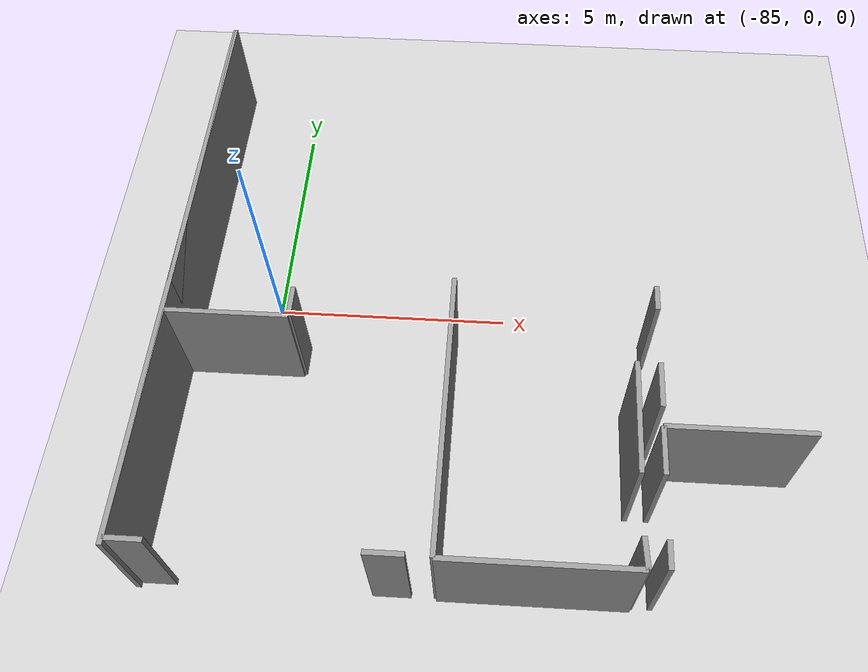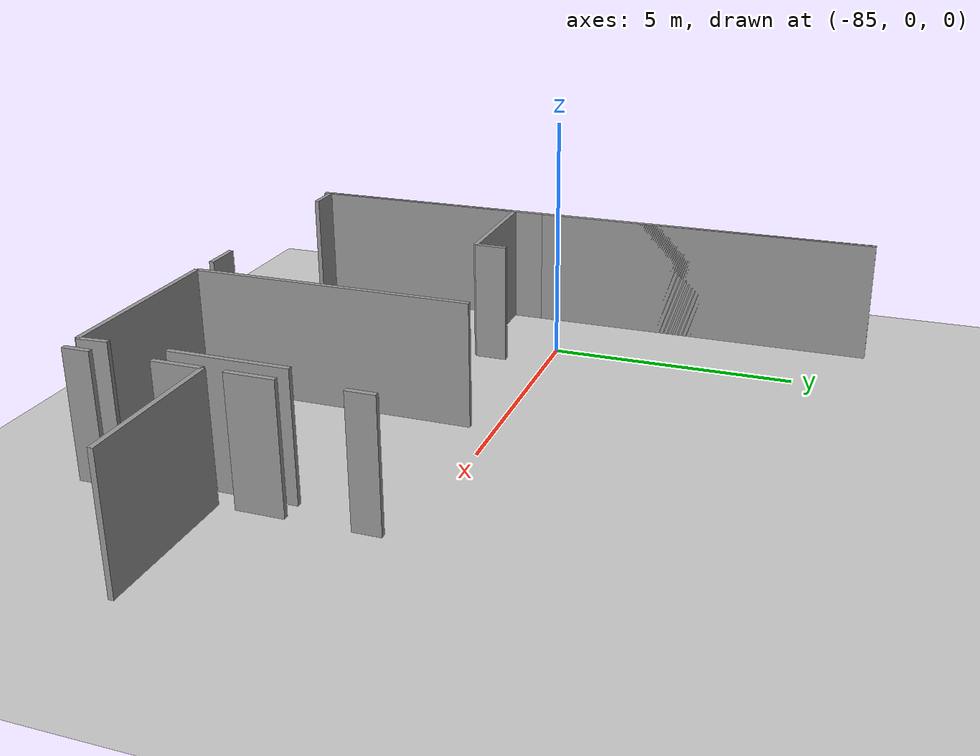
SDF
<sdf version="1.6">
 <world name="default">
  <model name="ground_plane">
   <static>1</static>
   <link name="link">
    <collision name="collision">
     <geometry><plane><normal>0 0 1</normal><size>100 100</size></plane></geometry>
     <surface><friction><ode><mu>100</mu><mu2>50</mu2></ode></friction></surface>
    </collision>
    <visual name="visual">
     <cast_shadows>0</cast_shadows>
     <geometry><plane><normal>0 0 1</normal><size>100 100</size></plane></geometry>
     <material>
      <script><uri>file://media/materials/scripts/gazebo.material</uri><name>Gazebo/Grey</name></script>
     </material>
    </visual>
   </link>
  </model>
  <model name="50015850_PLAN5">
   <static>1</static>
   <link name="Wall_25">
    <collision name="Wall_25_Collision">
     <geometry><box><size>0.744369012119 0.1 2.5</size></box></geometry>
     <pose>0.372184506059 0 1.25 0 0 0</pose>
    </collision>
    <visual name="Wall_25_Visual">
     <pose>0.372184506059 0 1.25 0 0 0</pose>
     <geometry><box><size>0.744369012119 0.1 2.5</size></box></geometry>
     <material>
      <script><uri>file://media/materials/scripts/gazebo.material</uri><name>Gazebo/Grey</name></script>
      <ambient>1 1 1 1</ambient>
     </material>
    </visual>
    <pose>5.24357591523 -12.5019986041 0 0 0 3.14159265359</pose>
   </link>
   <link name="Wall_26">
    <collision name="Wall_26_Collision">
     <geometry><box><size>0.719243702811 0.1 2.5</size></box></geometry>
     <pose>0.359621851405 0 1.25 0 0 0</pose>
    </collision>
    <visual name="Wall_26_Visual">
     <pose>0.359621851405 0 1.25 0 0 0</pose>
     <geometry><box><size>0.719243702811 0.1 2.5</size></box></geometry>
     <material>
      <script><uri>file://media/materials/scripts/gazebo.material</uri><name>Gazebo/Grey</name></script>
      <ambient>1 1 1 1</ambient>
     </material>
    </visual>
    <pose>0.726349850898 -12.5019986041 0 0 0 3.14159265359</pose>
   </link>
   <link name="Wall_27">
    <collision name="Wall_27_Collision">
     <geometry><box><size>4.60678890933 0.1 2.5</size></box></geometry>
     <pose>2.30339445467 0 1.25 0 0 0</pose>
    </collision>
    <visual name="Wall_27_Visual">
     <pose>2.30339445467 0 1.25 0 0 0</pose>
     <geometry><box><size>4.60678890933 0.1 2.5</size></box></geometry>
     <material>
      <script><uri>file://media/materials/scripts/gazebo.material</uri><name>Gazebo/Grey</name></script>
      <ambient>1 1 1 1</ambient>
     </material>
    </visual>
    <pose>0.00710614808705 -12.5019986041 0 0 0 1.57079632679</pose>
   </link>
   <link name="Wall_28">
    <collision name="Wall_28_Collision">
     <geometry><box><size>2.50542478269 0.1 2.5</size></box></geometry>
     <pose>1.25271239135 0 1.25 0 0 0</pose>
    </collision>
    <visual name="Wall_28_Visual">
     <pose>1.25271239135 0 1.25 0 0 0</pose>
     <geometry><box><size>2.50542478269 0.1 2.5</size></box></geometry>
     <material>
      <script><uri>file://media/materials/scripts/gazebo.material</uri><name>Gazebo/Grey</name></script>
      <ambient>1 1 1 1</ambient>
     </material>
    </visual>
    <pose>0.00710614808705 -7.89520969482 0 0 0 0.0</pose>
   </link>
   <link name="Wall_29">
    <collision name="Wall_29_Collision">
     <geometry><box><size>0.66366347313 0.1 2.5</size></box></geometry>
     <pose>0.331831736565 0 1.25 0 0 0</pose>
    </collision>
    <visual name="Wall_29_Visual">
     <pose>0.331831736565 0 1.25 0 0 0</pose>
     <geometry><box><size>0.66366347313 0.1 2.5</size></box></geometry>
     <material>
      <script><uri>file://media/materials/scripts/gazebo.material</uri><name>Gazebo/Grey</name></script>
      <ambient>1 1 1 1</ambient>
     </material>
    </visual>
    <pose>2.51253093078 -7.89520969482 0 0 0 1.57079632679</pose>
   </link>
   <link name="Wall_31">
    <collision name="Wall_31_Collision">
     <geometry><box><size>7.22773935664 0.1 2.5</size></box></geometry>
     <pose>3.61386967832 0 1.25 0 0 0</pose>
    </collision>
    <visual name="Wall_31_Visual">
     <pose>3.61386967832 0 1.25 0 0 0</pose>
     <geometry><box><size>7.22773935664 0.1 2.5</size></box></geometry>
     <material>
      <script><uri>file://media/materials/scripts/gazebo.material</uri><name>Gazebo/Grey</name></script>
      <ambient>1 1 1 1</ambient>
     </material>
    </visual>
    <pose>0.0 -7.23154622169 0 0 0 1.57079632679</pose>
   </link>
   <link name="Wall_37">
    <collision name="Wall_37_Collision">
     <geometry><box><size>3.65915868282 0.1 2.5</size></box></geometry>
     <pose>1.82957934141 0 1.25 0 0 0</pose>
    </collision>
    <visual name="Wall_37_Visual">
     <pose>1.82957934141 0 1.25 0 0 0</pose>
     <geometry><box><size>3.65915868282 0.1 2.5</size></box></geometry>
     <material>
      <script><uri>file://media/materials/scripts/gazebo.material</uri><name>Gazebo/Grey</name></script>
      <ambient>1 1 1 1</ambient>
     </material>
    </visual>
    <pose>9.38214580293 -12.5344838525 0 0 0 3.14159265359</pose>
   </link>
   <link name="Wall_38">
    <collision name="Wall_38_Collision">
     <geometry><box><size>5.70060275363 0.1 2.5</size></box></geometry>
     <pose>2.85030137682 0 1.25 0 0 0</pose>
    </collision>
    <visual name="Wall_38_Visual">
     <pose>2.85030137682 0 1.25 0 0 0</pose>
     <geometry><box><size>5.70060275363 0.1 2.5</size></box></geometry>
     <material>
      <script><uri>file://media/materials/scripts/gazebo.material</uri><name>Gazebo/Grey</name></script>
      <ambient>1 1 1 1</ambient>
     </material>
    </visual>
    <pose>5.72298712011 -12.5344838525 0 0 0 1.57079632679</pose>
   </link>
   <link name="Wall_42">
    <collision name="Wall_42_Collision">
     <geometry><box><size>2.27120106592 0.1 2.5</size></box></geometry>
     <pose>1.13560053296 0 1.25 0 0 0</pose>
    </collision>
    <visual name="Wall_42_Visual">
     <pose>1.13560053296 0 1.25 0 0 0</pose>
     <geometry><box><size>2.27120106592 0.1 2.5</size></box></geometry>
     <material>
      <script><uri>file://media/materials/scripts/gazebo.material</uri><name>Gazebo/Grey</name></script>
      <ambient>1 1 1 1</ambient>
     </material>
    </visual>
    <pose>9.33392551234 -8.52735232536 0 0 0 -1.57079632679</pose>
   </link>
   <link name="Wall_43">
    <collision name="Wall_43_Collision">
     <geometry><box><size>0.589754594356 0.1 2.5</size></box></geometry>
     <pose>0.294877297178 0 1.25 0 0 0</pose>
    </collision>
    <visual name="Wall_43_Visual">
     <pose>0.294877297178 0 1.25 0 0 0</pose>
     <geometry><box><size>0.589754594356 0.1 2.5</size></box></geometry>
     <material>
      <script><uri>file://media/materials/scripts/gazebo.material</uri><name>Gazebo/Grey</name></script>
      <ambient>1 1 1 1</ambient>
     </material>
    </visual>
    <pose>9.33392551234 -11.9467038893 0 0 0 -1.48894163554</pose>
   </link>
   <link name="Wall_50">
    <collision name="Wall_50_Collision">
     <geometry><box><size>0.92166740689 0.1 2.5</size></box></geometry>
     <pose>0.460833703445 0 1.25 0 0 0</pose>
    </collision>
    <visual name="Wall_50_Visual">
     <pose>0.460833703445 0 1.25 0 0 0</pose>
     <geometry><box><size>0.92166740689 0.1 2.5</size></box></geometry>
     <material>
      <script><uri>file://media/materials/scripts/gazebo.material</uri><name>Gazebo/Grey</name></script>
      <ambient>1 1 1 1</ambient>
     </material>
    </visual>
    <pose>9.77602943976 -9.45889220227 0 0 0 1.57079632679</pose>
   </link>
   <link name="Wall_51">
    <collision name="Wall_51_Collision">
     <geometry><box><size>0.542579785547 0.1 2.5</size></box></geometry>
     <pose>0.271289892773 0 1.25 0 0 0</pose>
    </collision>
    <visual name="Wall_51_Visual">
     <pose>0.271289892773 0 1.25 0 0 0</pose>
     <geometry><box><size>0.542579785547 0.1 2.5</size></box></geometry>
     <material>
      <script><uri>file://media/materials/scripts/gazebo.material</uri><name>Gazebo/Grey</name></script>
      <ambient>1 1 1 1</ambient>
     </material>
    </visual>
    <pose>9.77602943976 -7.34128545143 0 0 0 1.57079632679</pose>
   </link>
   <link name="Wall_55">
    <collision name="Wall_55_Collision">
     <geometry><box><size>0.534230061544 0.1 2.5</size></box></geometry>
     <pose>0.267115030772 0 1.25 0 0 0</pose>
    </collision>
    <visual name="Wall_55_Visual">
     <pose>0.267115030772 0 1.25 0 0 0</pose>
     <geometry><box><size>0.534230061544 0.1 2.5</size></box></geometry>
     <material>
      <script><uri>file://media/materials/scripts/gazebo.material</uri><name>Gazebo/Grey</name></script>
      <ambient>1 1 1 1</ambient>
     </material>
    </visual>
    <pose>9.76613159064 -12.5215405114 0 0 0 1.57079632679</pose>
   </link>
   <link name="Wall_56">
    <collision name="Wall_56_Collision">
     <geometry><box><size>0.954076517987 0.1 2.5</size></box></geometry>
     <pose>0.477038258994 0 1.25 0 0 0</pose>
    </collision>
    <visual name="Wall_56_Visual">
     <pose>0.477038258994 0 1.25 0 0 0</pose>
     <geometry><box><size>0.954076517987 0.1 2.5</size></box></geometry>
     <material>
      <script><uri>file://media/materials/scripts/gazebo.material</uri><name>Gazebo/Grey</name></script>
      <ambient>1 1 1 1</ambient>
     </material>
    </visual>
    <pose>9.76613159064 -10.8041367934 0 0 0 1.57079632679</pose>
   </link>
   <link name="Wall_57">
    <collision name="Wall_57_Collision">
     <geometry><box><size>2.86225493306 0.1 2.5</size></box></geometry>
     <pose>1.43112746653 0 1.25 0 0 0</pose>
    </collision>
    <visual name="Wall_57_Visual">
     <pose>1.43112746653 0 1.25 0 0 0</pose>
     <geometry><box><size>2.86225493306 0.1 2.5</size></box></geometry>
     <material>
      <script><uri>file://media/materials/scripts/gazebo.material</uri><name>Gazebo/Grey</name></script>
      <ambient>1 1 1 1</ambient>
     </material>
    </visual>
    <pose>9.76613159064 -9.85006027536 0 0 0 0.0</pose>
   </link>
   <link name="Wall_197">
    <collision name="Wall_197_Collision">
     <geometry><box><size>12.6408222829 0.1 2.5</size></box></geometry>
     <pose>6.32041114143 0 1.25 0 0 0</pose>
    </collision>
    <visual name="Wall_197_Visual">
     <pose>6.32041114143 0 1.25 0 0 0</pose>
     <geometry><box><size>12.6408222829 0.1 2.5</size></box></geometry>
     <material>
      <script><uri>file://media/materials/scripts/gazebo.material</uri><name>Gazebo/Grey</name></script>
      <ambient>1 1 1 1</ambient>
     </material>
    </visual>
    <pose>0.0 -12.6408222829 0 0 0 1.57079632679</pose>
   </link>
   <pose>-86.75 6.34082228285 0 0 0 0</pose>
  </model>
 </world>
</sdf>
